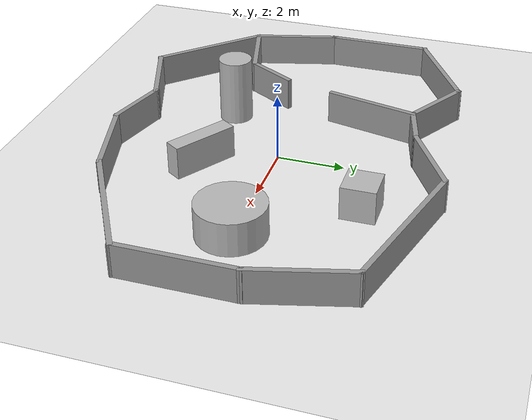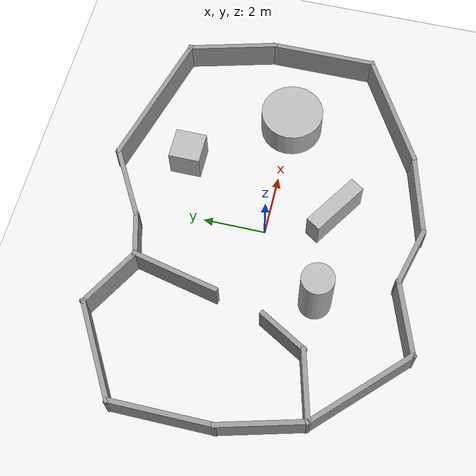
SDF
<?xml version="1.0" ?>
<sdf version="1.6">
  <world name="default">

    <!-- Embedded slippery ground model -->
    <model name="slippery_ground">
      <static>true</static>
      <link name="link">
        <collision name="collision">
          <geometry>
            <plane>
              <normal>0 0 1</normal>
              <size>100 100</size>
            </plane>
          </geometry>
          <surface>
            <friction>
              <ode>
                <mu>10</mu>
                <mu2>10</mu2>
              </ode>
            </friction>
          </surface>
        </collision>
        <visual name="visual">
          <geometry>
            <plane>
              <normal>0 0 1</normal>
              <size>100 100</size>
            </plane>
          </geometry>
          <material>
            <script>
              <uri>file://media/materials/scripts/gazebo.material</uri>
              <name>Gazebo/White</name>
            </script>
          </material>
        </visual>
      </link>
    </model>

    <!-- Add a cube -->
    <model name="fixed_cube1">
      <static>true</static>
      <pose>2 3 0.5 0 0 0</pose>
      <link name="link">
        <collision name="collision">
          <geometry>
            <box><size>1 1 1</size></box>
          </geometry>
        </collision>
        <visual name="visual">
          <geometry>
            <box><size>1 1 1</size></box>
          </geometry>
        </visual>
      </link>
    </model>

    <!-- Add a cube -->
    <model name="fixed_cube2">
      <static>true</static>
      <pose>1 -2 0.5 0 0 1</pose>
      <link name="link">
        <collision name="collision">
          <geometry>
            <box><size>0.5 2 1</size></box>
          </geometry>
        </collision>
        <visual name="visual">
          <geometry>
            <box><size>0.5 2 1</size></box>
          </geometry>
        </visual>
      </link>
    </model>

    <!-- Add a cylinder -->
    <model name="fixed_cylinder1">
      <static>true</static>
      <pose>-2 -2 1 0 0 0</pose>
      <link name="link">
        <collision name="collision">
          <geometry>
            <cylinder>
              <radius>0.5</radius>
              <length>2</length>
            </cylinder>
          </geometry>
        </collision>
        <visual name="visual">
          <geometry>
            <cylinder>
              <radius>0.5</radius>
              <length>2</length>
            </cylinder>
          </geometry>
        </visual>
      </link>
    </model>

    <!-- Add a cylinder -->
    <model name="fixed_cylinder2">
      <static>true</static>
      <pose>4 0 0.5 0 0 0</pose>
      <link name="link">
        <collision name="collision">
          <geometry>
            <cylinder>
              <radius>1</radius>
              <length>1</length>
            </cylinder>
          </geometry>
        </collision>
        <visual name="visual">
          <geometry>
            <cylinder>
              <radius>1</radius>
              <length>1</length>
            </cylinder>
          </geometry>
        </visual>
      </link>
    </model>

    <include>
      <uri>model://Walls</uri>
      <name>walls</name>
      <pose>0 0 0 0 0 0</pose> <!-- x y z roll pitch yaw -->
    </include>

    <!-- Optional sun for lighting -->
    <include>
      <uri>model://sun</uri>
    </include>

    <scene>
      <shadows>false</shadows>
    </scene>

    <gui fullscreen='0'>
      <camera name='user_camera'>
        <pose frame=''>0.319654 -0.235002 9.29441 0 1.5138 0.009599</pose>
        <view_controller>orbit</view_controller>
        <projection_type>perspective</projection_type>
      </camera>
    </gui>

    <physics type="ode">
      <real_time_update_rate>1000.0</real_time_update_rate>
      <max_step_size>0.001</max_step_size>
      <real_time_factor>1</real_time_factor>
      <ode>
        <solver>
          <type>quick</type>
          <iters>150</iters>
          <precon_iters>0</precon_iters>
          <sor>1.400000</sor>
          <use_dynamic_moi_rescaling>1</use_dynamic_moi_rescaling>
        </solver>
        <constraints>
          <cfm>0.00001</cfm>
          <erp>0.2</erp>
          <contact_max_correcting_vel>2000.000000</contact_max_correcting_vel>
          <contact_surface_layer>0.01000</contact_surface_layer>
        </constraints>
      </ode>
    </physics>

  </world>
</sdf>

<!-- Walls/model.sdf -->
<sdf version='1.7'>
  <model name='Walls'>
    <pose>-0.529125 1.37007 0 0 -0 0</pose>
    <link name='Wall_10'>
      <collision name='Wall_10_Collision'>
        <geometry>
          <box>
            <size>4.75 0.15 1</size>
          </box>
        </geometry>
        <pose>0 0 0.5 0 -0 0</pose>
      </collision>
      <visual name='Wall_10_Visual'>
        <pose>0 0 0.5 0 -0 0</pose>
        <geometry>
          <box>
            <size>4.75 0.15 1</size>
          </box>
        </geometry>
        <material>
          <script>
            <uri>file://media/materials/scripts/gazebo.material</uri>
            <name>Gazebo/Grey</name>
          </script>
          <ambient>1 1 1 1</ambient>
        </material>
        <meta>
          <layer>0</layer>
        </meta>
      </visual>
      <pose>3.55243 4.49722 0 0 -0 2.87979</pose>
    </link>
    <link name='Wall_11'>
      <collision name='Wall_11_Collision'>
        <geometry>
          <box>
            <size>2.5 0.15 1</size>
          </box>
        </geometry>
        <pose>0 0 0.5 0 -0 0</pose>
      </collision>
      <visual name='Wall_11_Visual'>
        <pose>0 0 0.5 0 -0 0</pose>
        <geometry>
          <box>
            <size>2.5 0.15 1</size>
          </box>
        </geometry>
        <material>
          <script>
            <uri>file://media/materials/scripts/gazebo.material</uri>
            <name>Gazebo/Grey</name>
          </script>
          <ambient>1 1 1 1</ambient>
        </material>
        <meta>
          <layer>0</layer>
        </meta>
      </visual>
      <pose>0.31322 4.50501 0 0 -0 -2.61799</pose>
    </link>
    <link name='Wall_12'>
      <collision name='Wall_12_Collision'>
        <geometry>
          <box>
            <size>1.5 0.15 1</size>
          </box>
        </geometry>
        <pose>0 0 0.5 0 -0 0</pose>
      </collision>
      <visual name='Wall_12_Visual'>
        <pose>0 0 0.5 0 -0 0</pose>
        <geometry>
          <box>
            <size>1.5 0.15 1</size>
          </box>
        </geometry>
        <material>
          <script>
            <uri>file://media/materials/scripts/gazebo.material</uri>
            <name>Gazebo/Grey</name>
          </script>
          <ambient>1 1 1 1</ambient>
        </material>
        <meta>
          <layer>0</layer>
        </meta>
      </visual>
      <pose>-1.35636 3.7428 0 0 -0 -2.87979</pose>
    </link>
    <link name='Wall_13'>
      <collision name='Wall_13_Collision'>
        <geometry>
          <box>
            <size>2.25 0.15 1</size>
          </box>
        </geometry>
        <pose>0 0 0.5 0 -0 0</pose>
      </collision>
      <visual name='Wall_13_Visual'>
        <pose>0 0 0.5 0 -0 0</pose>
        <geometry>
          <box>
            <size>2.25 0.15 1</size>
          </box>
        </geometry>
        <material>
          <script>
            <uri>file://media/materials/scripts/gazebo.material</uri>
            <name>Gazebo/Grey</name>
          </script>
          <ambient>1 1 1 1</ambient>
        </material>
        <meta>
          <layer>0</layer>
        </meta>
      </visual>
      <pose>-2.91769 4.0931 0 0 -0 2.61799</pose>
    </link>
    <link name='Wall_14'>
      <collision name='Wall_14_Collision'>
        <geometry>
          <box>
            <size>3.25 0.15 1</size>
          </box>
        </geometry>
        <pose>0 0 0.5 0 -0 0</pose>
      </collision>
      <visual name='Wall_14_Visual'>
        <pose>0 0 0.5 0 -0 0</pose>
        <geometry>
          <box>
            <size>3.25 0.15 1</size>
          </box>
        </geometry>
        <material>
          <script>
            <uri>file://media/materials/scripts/gazebo.material</uri>
            <name>Gazebo/Grey</name>
          </script>
          <ambient>1 1 1 1</ambient>
        </material>
        <meta>
          <layer>0</layer>
        </meta>
      </visual>
      <pose>-5.16935 3.8431 0 0 -0 -2.61799</pose>
    </link>
    <link name='Wall_15'>
      <collision name='Wall_15_Collision'>
        <geometry>
          <box>
            <size>3.25 0.15 1</size>
          </box>
        </geometry>
        <pose>0 0 0.5 0 -0 0</pose>
      </collision>
      <visual name='Wall_15_Visual'>
        <pose>0 0 0.5 0 -0 0</pose>
        <geometry>
          <box>
            <size>3.25 0.15 1</size>
          </box>
        </geometry>
        <material>
          <script>
            <uri>file://media/materials/scripts/gazebo.material</uri>
            <name>Gazebo/Grey</name>
          </script>
          <ambient>1 1 1 1</ambient>
        </material>
        <meta>
          <layer>0</layer>
        </meta>
      </visual>
      <pose>-6.51169 1.5181 0 0 -0 -1.5708</pose>
    </link>
    <link name='Wall_16'>
      <collision name='Wall_16_Collision'>
        <geometry>
          <box>
            <size>2.75 0.15 1</size>
          </box>
        </geometry>
        <pose>0 0 0.5 0 -0 0</pose>
      </collision>
      <visual name='Wall_16_Visual'>
        <pose>0 0 0.5 0 -0 0</pose>
        <geometry>
          <box>
            <size>2.75 0.15 1</size>
          </box>
        </geometry>
        <material>
          <script>
            <uri>file://media/materials/scripts/gazebo.material</uri>
            <name>Gazebo/Grey</name>
          </script>
          <ambient>1 1 1 1</ambient>
        </material>
        <meta>
          <layer>0</layer>
        </meta>
      </visual>
      <pose>-6.17523 -1.2876 0 0 -0 -1.309</pose>
    </link>
    <link name='Wall_17'>
      <collision name='Wall_17_Collision'>
        <geometry>
          <box>
            <size>3.75 0.15 1</size>
          </box>
        </geometry>
        <pose>0 0 0.5 0 -0 0</pose>
      </collision>
      <visual name='Wall_17_Visual'>
        <pose>0 0 0.5 0 -0 0</pose>
        <geometry>
          <box>
            <size>3.75 0.15 1</size>
          </box>
        </geometry>
        <material>
          <script>
            <uri>file://media/materials/scripts/gazebo.material</uri>
            <name>Gazebo/Grey</name>
          </script>
          <ambient>1 1 1 1</ambient>
        </material>
        <meta>
          <layer>0</layer>
        </meta>
      </visual>
      <pose>-4.56597 -3.8161 0 0 -0 -0.785398</pose>
    </link>
    <link name='Wall_18'>
      <collision name='Wall_18_Collision'>
        <geometry>
          <box>
            <size>2.45434 0.15 1</size>
          </box>
        </geometry>
        <pose>0 0 0.5 0 -0 0</pose>
      </collision>
      <visual name='Wall_18_Visual'>
        <pose>0 0 0.5 0 -0 0</pose>
        <geometry>
          <box>
            <size>2.45434 0.15 1</size>
          </box>
        </geometry>
        <material>
          <script>
            <uri>file://media/materials/scripts/gazebo.material</uri>
            <name>Gazebo/Grey</name>
          </script>
          <ambient>1 1 1 1</ambient>
        </material>
        <meta>
          <layer>0</layer>
        </meta>
      </visual>
      <pose>-2.20703 -4.70448 0 0 -0 0.340165</pose>
    </link>
    <link name='Wall_24'>
      <collision name='Wall_24_Collision'>
        <geometry>
          <box>
            <size>2.25 0.15 1</size>
          </box>
        </geometry>
        <pose>0 0 0.5 0 -0 0</pose>
      </collision>
      <visual name='Wall_24_Visual'>
        <pose>0 0 0.5 0 -0 0</pose>
        <geometry>
          <box>
            <size>2.25 0.15 1</size>
          </box>
        </geometry>
        <material>
          <script>
            <uri>file://media/materials/scripts/gazebo.material</uri>
            <name>Gazebo/Grey</name>
          </script>
          <ambient>1 1 1 1</ambient>
        </material>
        <meta>
          <layer>0</layer>
        </meta>
      </visual>
      <pose>-4.82454 -2.27155 0 0 -0 0.261799</pose>
    </link>
    <link name='Wall_25'>
      <collision name='Wall_25_Collision'>
        <geometry>
          <box>
            <size>1.75 0.15 1</size>
          </box>
        </geometry>
        <pose>0 0 0.5 0 -0 0</pose>
      </collision>
      <visual name='Wall_25_Visual'>
        <pose>0 0 0.5 0 -0 0</pose>
        <geometry>
          <box>
            <size>1.75 0.15 1</size>
          </box>
        </geometry>
        <material>
          <script>
            <uri>file://media/materials/scripts/gazebo.material</uri>
            <name>Gazebo/Grey</name>
          </script>
          <ambient>1 1 1 1</ambient>
        </material>
        <meta>
          <layer>0</layer>
        </meta>
      </visual>
      <pose>-3.41032 -1.30697 0 0 -0 1.0472</pose>
    </link>
    <link name='Wall_27'>
      <collision name='Wall_27_Collision'>
        <geometry>
          <box>
            <size>2.8515 0.15 1</size>
          </box>
        </geometry>
        <pose>0 0 0.5 0 -0 0</pose>
      </collision>
      <visual name='Wall_27_Visual'>
        <pose>0 0 0.5 0 -0 0</pose>
        <geometry>
          <box>
            <size>2.8515 0.15 1</size>
          </box>
        </geometry>
        <material>
          <script>
            <uri>file://media/materials/scripts/gazebo.material</uri>
            <name>Gazebo/Grey</name>
          </script>
          <ambient>1 1 1 1</ambient>
        </material>
        <meta>
          <layer>0</layer>
        </meta>
      </visual>
      <pose>-2.30228 2.24972 0 0 -0 1.35144</pose>
    </link>
    <link name='Wall_5'>
      <collision name='Wall_5_Collision'>
        <geometry>
          <box>
            <size>2 0.15 1</size>
          </box>
        </geometry>
        <pose>0 0 0.5 0 -0 0</pose>
      </collision>
      <visual name='Wall_5_Visual'>
        <pose>0 0 0.5 0 -0 0</pose>
        <geometry>
          <box>
            <size>2 0.15 1</size>
          </box>
        </geometry>
        <material>
          <script>
            <uri>file://media/materials/scripts/gazebo.material</uri>
            <name>Gazebo/Grey</name>
          </script>
          <ambient>1 1 1 1</ambient>
        </material>
        <meta>
          <layer>0</layer>
        </meta>
      </visual>
      <pose>-0.227394 -4.55947 0 0 -0 -0.261799</pose>
    </link>
    <link name='Wall_6'>
      <collision name='Wall_6_Collision'>
        <geometry>
          <box>
            <size>2.75 0.15 1</size>
          </box>
        </geometry>
        <pose>0 0 0.5 0 -0 0</pose>
      </collision>
      <visual name='Wall_6_Visual'>
        <pose>0 0 0.5 0 -0 0</pose>
        <geometry>
          <box>
            <size>2.75 0.15 1</size>
          </box>
        </geometry>
        <material>
          <script>
            <uri>file://media/materials/scripts/gazebo.material</uri>
            <name>Gazebo/Grey</name>
          </script>
          <ambient>1 1 1 1</ambient>
        </material>
        <meta>
          <layer>0</layer>
        </meta>
      </visual>
      <pose>1.92179 -4.46242 0 0 -0 0.261799</pose>
    </link>
    <link name='Wall_7'>
      <collision name='Wall_7_Collision'>
        <geometry>
          <box>
            <size>4 0.15 1</size>
          </box>
        </geometry>
        <pose>0 0 0.5 0 -0 0</pose>
      </collision>
      <visual name='Wall_7_Visual'>
        <pose>0 0 0.5 0 -0 0</pose>
        <geometry>
          <box>
            <size>4 0.15 1</size>
          </box>
        </geometry>
        <material>
          <script>
            <uri>file://media/materials/scripts/gazebo.material</uri>
            <name>Gazebo/Grey</name>
          </script>
          <ambient>1 1 1 1</ambient>
        </material>
        <meta>
          <layer>0</layer>
        </meta>
      </visual>
      <pose>4.84459 -3.16345 0 0 -0 0.523599</pose>
    </link>
    <link name='Wall_8'>
      <collision name='Wall_8_Collision'>
        <geometry>
          <box>
            <size>3.5 0.15 1</size>
          </box>
        </geometry>
        <pose>0 0 0.5 0 -0 0</pose>
      </collision>
      <visual name='Wall_8_Visual'>
        <pose>0 0 0.5 0 -0 0</pose>
        <geometry>
          <box>
            <size>3.5 0.15 1</size>
          </box>
        </geometry>
        <material>
          <script>
            <uri>file://media/materials/scripts/gazebo.material</uri>
            <name>Gazebo/Grey</name>
          </script>
          <ambient>1 1 1 1</ambient>
        </material>
        <meta>
          <layer>0</layer>
        </meta>
      </visual>
      <pose>6.51169 -0.52595 0 0 -0 1.5708</pose>
    </link>
    <link name='Wall_9'>
      <collision name='Wall_9_Collision'>
        <geometry>
          <box>
            <size>3 0.15 1</size>
          </box>
        </geometry>
        <pose>0 0 0.5 0 -0 0</pose>
      </collision>
      <visual name='Wall_9_Visual'>
        <pose>0 0 0.5 0 -0 0</pose>
        <geometry>
          <box>
            <size>3 0.15 1</size>
          </box>
        </geometry>
        <material>
          <script>
            <uri>file://media/materials/scripts/gazebo.material</uri>
            <name>Gazebo/Grey</name>
          </script>
          <ambient>1 1 1 1</ambient>
        </material>
        <meta>
          <layer>0</layer>
        </meta>
      </visual>
      <pose>6.14288 2.52549 0 0 -0 1.8326</pose>
    </link>
    <static>1</static>
  </model>
</sdf>
